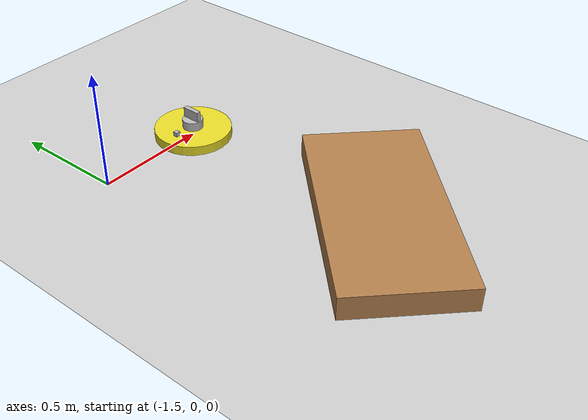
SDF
<sdf version="1.5">
 <world name="default">
  <light name="sun" type="directional">
   <pose>0 0 10 0 -0 0</pose>
   <diffuse>0.8 0.8 0.8 1</diffuse>
   <specular>0.2 0.2 0.2 1</specular>
   <attenuation>
    <range>1000</range>
    <constant>0.9</constant>
    <linear>0.01</linear>
    <quadratic>0.001</quadratic>
   </attenuation>
   <direction>-0.5 0.1 -0.9</direction>
  </light>
  <model name="ground_plane">
   <static>1</static>
   <link name="link">
    <collision name="collision">
     <geometry><plane><normal>0 0 1</normal><size>100 100</size></plane></geometry>
     <surface><friction><ode><mu>100</mu><mu2>50</mu2></ode></friction></surface>
    </collision>
    <visual name="visual">
     <cast_shadows>0</cast_shadows>
     <geometry><plane><normal>0 0 1</normal><size>100 100</size></plane></geometry>
     <material>
      <script><uri>file://media/materials/scripts/gazebo.material</uri><name>Gazebo/Grey</name></script>
     </material>
    </visual>
    <velocity_decay><linear>0</linear><angular>0</angular></velocity_decay>
   </link>
  </model>
  <physics default="0" name="default_physics" type="ode">
   <max_step_size>0.001</max_step_size>
   <real_time_factor>1</real_time_factor>
   <real_time_update_rate>1000</real_time_update_rate>
   <gravity>0 0 -9.8</gravity>
   <magnetic_field>6e-06 2.3e-05 -4.2e-05</magnetic_field>
  </physics>
  <scene><ambient>0.4 0.4 0.4 1</ambient><background>0.7 0.7 0.7 1</background><shadows>1</shadows></scene>
  <spherical_coordinates>
   <surface_model>EARTH_WGS84</surface_model>
   <latitude_deg>0</latitude_deg>
   <longitude_deg>0</longitude_deg>
   <elevation>0</elevation>
   <heading_deg>0</heading_deg>
  </spherical_coordinates>
  <model name="iRobot">
   <link name="base_link">
    <inertial>
     <pose>-1e-05 0 2e-06 0 -0 0</pose>
     <mass>10.0031</mass>
     <inertia>
      <ixx>0.425046</ixx>
      <ixy>0</ixy>
      <ixz>4.99979e-06</ixz>
      <iyy>0.425016</iyy>
      <iyz>-4.08016e-18</iyz>
      <izz>0.850052</izz>
     </inertia>
    </inertial>
    <collision name="base_link_collision_camera_link">
     <pose>0 0 0.1 0 -0 0</pose>
     <geometry><box><size>0.02 0.08 0.05</size></box></geometry>
    </collision>
    <collision name="base_link_collision_chassis">
     <geometry><cylinder><length>0.08</length><radius>0.17</radius></cylinder></geometry>
    </collision>
    <collision name="base_link_collision_hokuyo_laser_link">
     <pose>0 0 0.06 0 -0 0</pose>
     <geometry><cylinder><length>0.04</length><radius>0.045</radius></cylinder></geometry>
    </collision>
    <collision name="base_link_collision_imu_sensor_link">
     <pose>-0.1 0 0.05 0 -0 0</pose>
     <geometry><box><size>0.02 0.02 0.02</size></box></geometry>
    </collision>
    <collision name="base_link_collision_left_axis">
     <pose>0 0.14 -0.02 -1.5708 0 0</pose>
     <geometry><cylinder><length>0.02</length><radius>0.0025</radius></cylinder></geometry>
    </collision>
    <collision name="base_link_collision_right_axis">
     <pose>0 -0.14 -0.02 -1.5708 0 0</pose>
     <geometry><cylinder><length>0.02</length><radius>0.0025</radius></cylinder></geometry>
    </collision>
    <visual name="base_link_visual_camera_link">
     <pose>0 0 0.1 0 -0 0</pose>
     <geometry><box><size>0.02 0.08 0.05</size></box></geometry>
    </visual>
    <visual name="base_link_visual_chassis">
     <geometry><cylinder><length>0.08</length><radius>0.17</radius></cylinder></geometry>
     <material><script><name>Gazebo/Yellow</name><uri>__default__</uri></script></material>
    </visual>
    <visual name="base_link_visual_hokuyo_laser_link">
     <pose>0 0 0.06 0 -0 0</pose>
     <geometry><cylinder><length>0.04</length><radius>0.045</radius></cylinder></geometry>
    </visual>
    <visual name="base_link_visual_imu_sensor_link">
     <pose>-0.1 0 0.05 0 -0 0</pose>
     <geometry><box><size>0.02 0.02 0.02</size></box></geometry>
    </visual>
    <visual name="base_link_visual_left_axis">
     <pose>0 0.14 -0.02 -1.5708 0 0</pose>
     <geometry><cylinder><length>0.02</length><radius>0.0025</radius></cylinder></geometry>
    </visual>
    <visual name="base_link_visual_right_axis">
     <pose>0 -0.14 -0.02 -1.5708 0 0</pose>
     <geometry><cylinder><length>0.02</length><radius>0.0025</radius></cylinder></geometry>
    </visual>
    <velocity_decay><linear>0</linear><angular>0</angular></velocity_decay>
    <velocity_decay><linear>0</linear><angular>0</angular></velocity_decay>
    <velocity_decay><linear>0</linear><angular>0</angular></velocity_decay>
    <sensor name="camera" type="camera">
     <update_rate>30</update_rate>
     <camera name="head">
      <horizontal_fov>1.39626</horizontal_fov>
      <image><width>800</width><height>600</height><format>R8G8B8</format></image>
      <clip><near>0.02</near><far>300</far></clip>
      <noise><type>gaussian</type><mean>0</mean><stddev>0.007</stddev></noise>
     </camera>
     <plugin filename="libgazebo_ros_camera.so" name="camera_controller">
      <alwaysOn>true</alwaysOn>
      <updateRate>0.0</updateRate>
      <cameraName>iRobot/camera</cameraName>
      <imageTopicName>image_raw</imageTopicName>
      <cameraInfoTopicName>camera_info</cameraInfoTopicName>
      <frameName>camera_link</frameName>
      <hackBaseline>0.07</hackBaseline>
      <distortionK1>0.0</distortionK1>
      <distortionK2>0.0</distortionK2>
      <distortionK3>0.0</distortionK3>
      <distortionT1>0.0</distortionT1>
      <distortionT2>0.0</distortionT2>
     </plugin>
     <pose>0 0 0.1 0 -0 0</pose>
    </sensor>
    <velocity_decay><linear>0</linear><angular>0</angular></velocity_decay>
    <sensor name="head_hokuyo_sensor" type="ray">
     <visualize>0</visualize>
     <update_rate>40</update_rate>
     <ray>
      <scan>
       <horizontal>
        <samples>360</samples>
        <resolution>1</resolution>
        <min_angle>-3.14159</min_angle>
        <max_angle>3.14159</max_angle>
       </horizontal>
      </scan>
      <range><min>0.15</min><max>40</max><resolution>0.025</resolution></range>
      <noise><type>gaussian</type><mean>0</mean><stddev>0</stddev></noise>
     </ray>
     <plugin filename="libgazebo_ros_laser.so" name="gazebo_ros_head_hokuyo_controller">
      <topicName>laser_scan</topicName>
      <frameName>hokuyo_laser_link</frameName>
     </plugin>
     <pose>0 0 0.06 0 -0 0</pose>
    </sensor>
    <velocity_decay><linear>0</linear><angular>0</angular></velocity_decay>
    <sensor name="imu_sensor" type="imu">
     <always_on>1</always_on>
     <update_rate>1000</update_rate>
     <visualize>1</visualize>
     <topic>__default_topic__</topic>
     <plugin filename="libgazebo_ros_imu_sensor.so" name="imu_plugin">
      <topicName>imu_data</topicName>
      <bodyName>imu_sensor_link</bodyName>
      <updateRateHZ>10.0</updateRateHZ>
      <gaussianNoise>0.0</gaussianNoise>
      <xyzOffset>0 0 0</xyzOffset>
      <rpyOffset>0 0 0</rpyOffset>
     </plugin>
     <pose>-0.1 0 0.05 0 -0 0</pose>
    </sensor>
   </link>
   <link name="left_wheel_link">
    <pose>0 0.14 -0.02 0 -0 0</pose>
    <inertial>
     <pose>0 0.01 0 -1.5708 0 0</pose>
     <mass>0.5</mass>
     <inertia><ixx>0.00375</ixx><ixy>0</ixy><ixz>0</ixz><iyy>0.00375</iyy><iyz>0</iyz><izz>0.00125</izz></inertia>
    </inertial>
    <collision name="left_wheel_link_collision">
     <pose>0 0 0 -1.5708 0 0</pose>
     <geometry><cylinder><length>0.02</length><radius>0.03</radius></cylinder></geometry>
     <max_contacts>1</max_contacts>
     <surface>
      <contact><ode><kp>1e+07</kp><kd>1</kd><min_depth>0.0001</min_depth></ode></contact>
      <friction><ode><mu>50</mu><mu2>10</mu2><fdir1>1 0 0</fdir1></ode></friction>
     </surface>
    </collision>
    <visual name="left_wheel_link_visual">
     <pose>0 0 0 -1.5708 0 0</pose>
     <geometry><cylinder><length>0.02</length><radius>0.03</radius></cylinder></geometry>
     <material><script><name>Gazebo/Grey</name><uri>__default__</uri></script></material>
    </visual>
    <velocity_decay><linear>0</linear><angular>0</angular></velocity_decay>
   </link>
   <joint name="left_wheel_rot_joint" type="revolute">
    <child>left_wheel_link</child>
    <parent>base_link</parent>
    <axis>
     <xyz>0 1 0</xyz>
     <limit><lower>-1e+16</lower><upper>1e+16</upper></limit>
     <dynamics><spring_reference>0</spring_reference><spring_stiffness>0</spring_stiffness></dynamics>
     <use_parent_model_frame>1</use_parent_model_frame>
    </axis>
   </joint>
   <link name="right_wheel_link">
    <pose>0 -0.14 -0.02 0 -0 0</pose>
    <inertial>
     <pose>0 0.01 0 -1.5708 0 0</pose>
     <mass>0.5</mass>
     <inertia><ixx>0.00375</ixx><ixy>0</ixy><ixz>0</ixz><iyy>0.00375</iyy><iyz>0</iyz><izz>0.00125</izz></inertia>
    </inertial>
    <collision name="right_wheel_link_collision">
     <pose>0 0 0 -1.5708 0 0</pose>
     <geometry><cylinder><length>0.02</length><radius>0.03</radius></cylinder></geometry>
     <max_contacts>1</max_contacts>
     <surface>
      <contact><ode><kp>1e+07</kp><kd>1</kd><min_depth>0.0001</min_depth></ode></contact>
      <friction><ode><mu>50</mu><mu2>10</mu2><fdir1>1 0 0</fdir1></ode></friction>
     </surface>
    </collision>
    <visual name="right_wheel_link_visual">
     <pose>0 0 0 -1.5708 0 0</pose>
     <geometry><cylinder><length>0.02</length><radius>0.03</radius></cylinder></geometry>
     <material><script><name>Gazebo/Grey</name><uri>__default__</uri></script></material>
    </visual>
    <velocity_decay><linear>0</linear><angular>0</angular></velocity_decay>
   </link>
   <joint name="right_wheel_rot_joint" type="revolute">
    <child>right_wheel_link</child>
    <parent>base_link</parent>
    <axis>
     <xyz>0 1 0</xyz>
     <limit><lower>-1e+16</lower><upper>1e+16</upper></limit>
     <dynamics><spring_reference>0</spring_reference><spring_stiffness>0</spring_stiffness></dynamics>
     <use_parent_model_frame>1</use_parent_model_frame>
    </axis>
   </joint>
   <link name="sphere1">
    <pose>0.14 0 -0.04 0 -0 0</pose>
    <inertial>
     <mass>0.3</mass>
     <inertia><ixx>0.0012</ixx><ixy>0</ixy><ixz>0</ixz><iyy>0.0012</iyy><iyz>0</iyz><izz>0.0012</izz></inertia>
    </inertial>
    <collision name="sphere1_collision">
     <geometry><sphere><radius>0.01</radius></sphere></geometry>
     <max_contacts>1</max_contacts>
     <surface>
      <contact><ode><kp>1e+07</kp><kd>1</kd><min_depth>0.0001</min_depth></ode></contact>
      <friction><ode><mu>0</mu><mu2>0</mu2><fdir1>1 0 0</fdir1></ode></friction>
     </surface>
    </collision>
    <visual name="sphere1_visual">
     <geometry><sphere><radius>0.01</radius></sphere></geometry>
     <material><script><name>Gazebo/Grey</name><uri>__default__</uri></script></material>
    </visual>
    <velocity_decay><linear>0</linear><angular>0</angular></velocity_decay>
   </link>
   <joint name="sphere_joint1" type="revolute">
    <child>sphere1</child>
    <parent>base_link</parent>
    <axis>
     <xyz>0 0 1</xyz>
     <limit><lower>0</lower><upper>0</upper><effort>100</effort><velocity>100</velocity></limit>
     <dynamics><spring_reference>0</spring_reference><spring_stiffness>0</spring_stiffness></dynamics>
     <use_parent_model_frame>1</use_parent_model_frame>
    </axis>
   </joint>
   <link name="sphere2">
    <pose>-0.14 0 -0.04 0 -0 0</pose>
    <inertial>
     <mass>0.3</mass>
     <inertia><ixx>0.0012</ixx><ixy>0</ixy><ixz>0</ixz><iyy>0.0012</iyy><iyz>0</iyz><izz>0.0012</izz></inertia>
    </inertial>
    <collision name="sphere2_collision">
     <geometry><sphere><radius>0.01</radius></sphere></geometry>
     <max_contacts>1</max_contacts>
     <surface>
      <contact><ode><kp>1e+07</kp><kd>1</kd><min_depth>0.0001</min_depth></ode></contact>
      <friction><ode><mu>0</mu><mu2>0</mu2><fdir1>1 0 0</fdir1></ode></friction>
     </surface>
    </collision>
    <visual name="sphere2_visual">
     <geometry><sphere><radius>0.01</radius></sphere></geometry>
     <material><script><name>Gazebo/Grey</name><uri>__default__</uri></script></material>
    </visual>
    <velocity_decay><linear>0</linear><angular>0</angular></velocity_decay>
   </link>
   <joint name="sphere_joint2" type="revolute">
    <child>sphere2</child>
    <parent>base_link</parent>
    <axis>
     <xyz>0 0 1</xyz>
     <limit><lower>0</lower><upper>0</upper><effort>100</effort><velocity>100</velocity></limit>
     <dynamics><spring_reference>0</spring_reference><spring_stiffness>0</spring_stiffness></dynamics>
     <use_parent_model_frame>1</use_parent_model_frame>
    </axis>
   </joint>
   <static>0</static>
   <plugin filename="libgazebo_ros_diff_drive.so" name="differential_drive_controller">
    <rosDebugLevel>Debug</rosDebugLevel>
    <publishWheelTF>false</publishWheelTF>
    <publishWheelJointState>true</publishWheelJointState>
    <alwaysOn>true</alwaysOn>
    <leftJoint>left_wheel_rot_joint</leftJoint>
    <rightJoint>right_wheel_rot_joint</rightJoint>
    <wheelSeparation>0.28</wheelSeparation>
    <wheelDiameter>0.06</wheelDiameter>
    <torque>20</torque>
    <wheelAcceleration>1.8</wheelAcceleration>
    <commandTopic>cmd_vel</commandTopic>
    <odometryTopic>odom</odometryTopic>
    <odometryFrame>odom</odometryFrame>
    <robotBaseFrame>base_link</robotBaseFrame>
    <updateRate>10.0</updateRate>
   </plugin>
   <plugin filename="libgazebo_ros_joint_state_publisher.so" name="joint_state_publisher">
    <jointName>left_wheel_rot_joint, right_wheel_rot_joint</jointName>
    <updateRate>10.0</updateRate>
    <alwaysOn>true</alwaysOn>
   </plugin>
   <plugin filename="libgazebo_ros_imu.so" name="imu_plugin">
    <bodyName>base_link</bodyName>
    <updateRate>100.0</updateRate>
    <topicName>imu_data</topicName>
    <serviceName>imu_service</serviceName>
    <gaussianNoise>0.1</gaussianNoise>
    <xyzOffset>0 0 0</xyzOffset>
    <rpyOffset>0 0 0</rpyOffset>
   </plugin>
   <pose>-1 0 0 0 0 0</pose>
  </model>
  <model name="my_box">
   <pose>-1 -1 0 0 0 0.785</pose>
   <static>0</static>
   <link name="link">
    <inertial>
     <mass>0.3</mass>
     <inertia><ixx>0.00725</ixx><ixy>0</ixy><ixz>0</ixz><iyy>0.026</iyy><iyz>0</iyz><izz>0.03125</izz></inertia>
    </inertial>
    <collision name="collision"><geometry><box><size>1 0.5 0.2</size></box></geometry></collision>
    <visual name="visual">
     <geometry><box><size>1 0.5 0.2</size></box></geometry>
     <material>
      <script><uri>file://media/materials/scripts/gazebo.material</uri><name>Gazebo/Wood</name></script>
     </material>
    </visual>
   </link>
  </model>
 </world>
</sdf>
